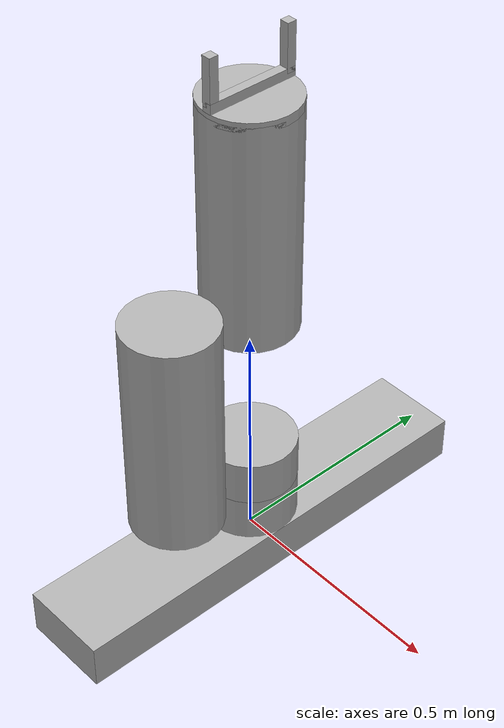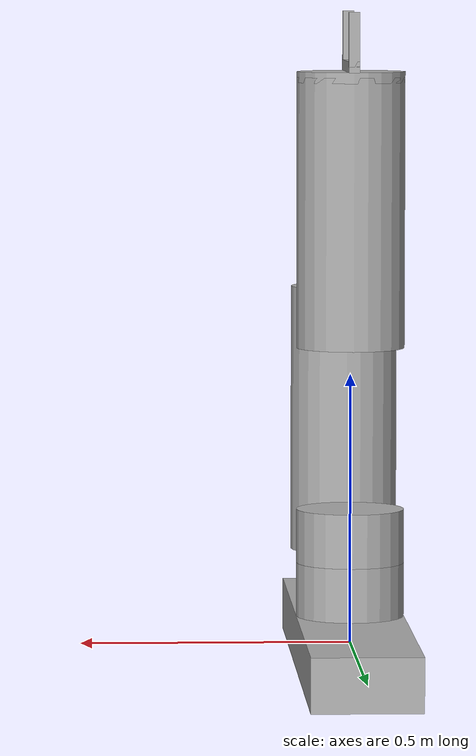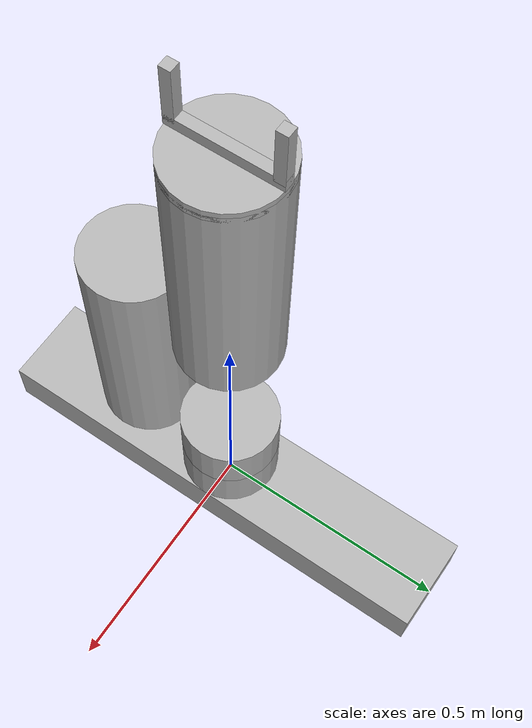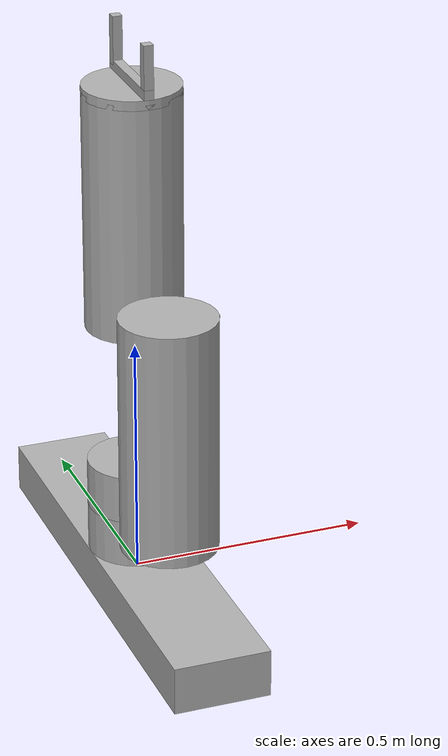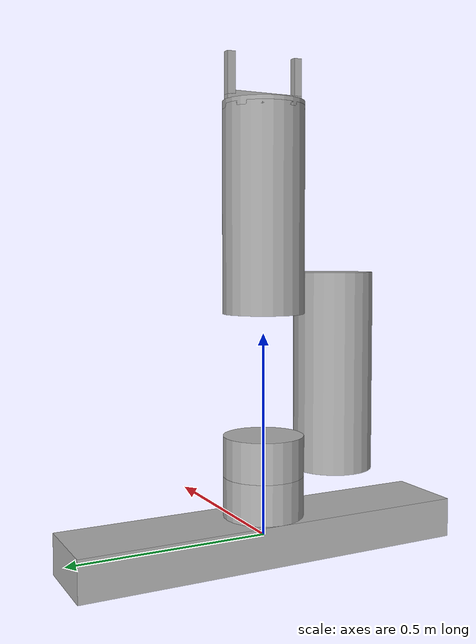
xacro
<?xml version="1.0"?>
<robot name="arm_robot" xmlns:xacro="http://www.ros.org/wiki/xacro">

  <!-- Constants -->
  <xacro:property name="density" value="2710"/> <!-- Aluminum density kg/m³ -->
  <xacro:property name="pi" value="3.1415926535897931"/>

  <!-- Materials -->
  <material name="aluminum">
    <color rgba="0.7 0.7 0.7 1"/>
  </material>
  <material name="gripper_color">
    <color rgba="0.9 0.9 0.9 1"/>
  </material>

  <!-- Generic Cylinder Macro -->
  <xacro:macro name="cylinder_link" params="name radius length origin_xyz origin_rpy">
    <link name="${name}">
      <xacro:property name="mass" value="${density * pi * radius*radius * length}"/>

      <visual>
        <origin rpy="${origin_rpy}" xyz="${origin_xyz}"/>
        <geometry>
          <cylinder radius="${radius}" length="${length}"/>
        </geometry>
        <material name="aluminum"/>
      </visual>

      <collision>
        <origin rpy="${origin_rpy}" xyz="${origin_xyz}"/>
        <geometry>
          <cylinder radius="${radius}" length="${length}"/>
        </geometry>
      </collision>

      <inertial>
        <origin rpy="${origin_rpy}" xyz="${origin_xyz}"/>
        <mass value="${mass}"/>
        <inertia
          ixx="${(mass/12) * (3*radius*radius + length*length)}"
          ixy="0"
          ixz="0"
          iyy="${(mass/12) * (3*radius*radius + length*length)}"
          iyz="0"
          izz="${0.5 * mass * radius*radius}"/>
      </inertial>
    </link>
  </xacro:macro>

  <!-- Generic Box Macro -->
  <xacro:macro name="box_link" params="name size_x size_y size_z origin_xyz origin_rpy">
    <link name="${name}">
      <xacro:property name="mass" value="${density * size_x * size_y * size_z}"/>

      <visual>
        <origin rpy="${origin_rpy}" xyz="${origin_xyz}"/>
        <geometry>
          <box size="${size_x} ${size_y} ${size_z}"/>
        </geometry>
        <material name="aluminum"/>
      </visual>

      <collision>
        <origin rpy="${origin_rpy}" xyz="${origin_xyz}"/>
        <geometry>
          <box size="${size_x} ${size_y} ${size_z}"/>
        </geometry>
      </collision>

      <inertial>
        <origin rpy="${origin_rpy}" xxyz="${origin_xyz}"/>
        <mass value="${mass}"/>
        <inertia
          ixx="${(mass/12) * (size_y*size_y + size_z*size_z)}"
          ixy="0"
          ixz="0"
          iyy="${(mass/12) * (size_x*size_x + size_z*size_z)}"
          iyz="0"
          izz="${(mass/12) * (size_x*size_x + size_y*size_y)}"/>
      </inertial>
    </link>
  </xacro:macro>

  <!-- Arm Link Components -->
  <xacro:box_link name="base_link"
    size_x="0.2" size_y="1" size_z="0.1"
    origin_xyz="0 0 0" origin_rpy="0 0 0"/>

  <xacro:cylinder_link name="arm1_p_link"
    radius="0.1" length="0.1"
    origin_xyz="0 0 0" origin_rpy="0 0 0"/>

  <xacro:cylinder_link name="arm1_r_link"
    radius="0.1" length="0.1"
    origin_xyz="0 0 0" origin_rpy="0 0 0"/>

  <xacro:cylinder_link name="arm2_link"
    radius="0.1" length="0.5"
    origin_xyz="0 0 ${(0.5-0.1)/2}" origin_rpy="0 0 0"/>

  <xacro:cylinder_link name="arm3_link"
    radius="0.1" length="0.5"
    origin_xyz="0 0 ${(0.5-0.1)/2}" origin_rpy="0 0 0"/>

  <xacro:cylinder_link name="arm4_link"
    radius="0.08" length="0.5"
    origin_xyz="0 0 ${(0.5-0.1)/2}" origin_rpy="0 0 0"/>

  <xacro:cylinder_link name="arm5_link"
    radius="0.1" length="0.02"
    origin_xyz="0 0 0" origin_rpy="0 0 0"/>

  <xacro:box_link name="arm6_link"
    size_x="0.02" size_y="0.2" size_z="0.02"
    origin_xyz="0 0 0" origin_rpy="0 0 0"/>

  <!-- Arm Joints -->

  <joint name="arm1_p_joint" type="prismatic">
    <parent link="base_link"/>
    <child link="arm1_p_link"/>
    <origin rpy="0 0 0" xyz="0 0 0.1"/>
    <axis xyz="0 1 0"/>
    <limit lower="-0.4" upper="0.4" effort="100" velocity="0.1"/>
  </joint>

  <joint name="arm1_r_joint" type="revolute">
    <parent link="arm1_p_link"/>
    <child link="arm1_r_link"/>
    <origin rpy="0 0 0" xyz="0 0 0.1"/>
    <axis xyz="0 0 1"/>
    <limit lower="-1.57" upper="1.57" effort="100" velocity="0.1"/>
  </joint>

  <joint name="arm2_joint" type="revolute">
    <parent link="arm1_r_link"/>
    <child link="arm2_link"/>
    <origin rpy="0 0 0" xyz="0 -0.2 -0"/>
    <axis xyz="0 1 0"/>
    <limit lower="-1.68" upper="2.01" effort="100" velocity="0.1"/>
  </joint>

  <joint name="arm3_joint" type="revolute">
    <parent link="arm2_link"/>
    <child link="arm3_link"/>
    <origin rpy="0 0 0" xyz="0 0.2 0.4"/>
    <axis xyz="0 1 0"/>
    <limit lower="-2.80" upper="2.80" effort="100" velocity="0.1"/>
  </joint>

  <joint name="arm4_joint" type="prismatic">
    <parent link="arm3_link"/>
    <child link="arm4_link"/>
    <origin rpy="0 0 0" xyz="0 0 0"/>
    <axis xyz="0 0 1"/>
    <limit lower="0" upper="0.5" effort="100" velocity="0.1"/>
  </joint>

  <joint name="arm5_joint" type="revolute">
    <parent link="arm4_link"/>
    <child link="arm5_link"/>
    <origin rpy="0 0 0" xyz="0 0 0.45"/>
    <axis xyz="0 0 1"/>
    <limit lower="-2.80" upper="2.80" effort="100" velocity="0.1"/>
  </joint>

  <joint name="arm6_joint" type="fixed">
    <parent link="arm5_link"/>
    <child link="arm6_link"/>
    <origin rpy="0 0 0" xyz="0 0 0.02"/>
  </joint>

  <!-- Gripper Components -->

  <xacro:box_link name="gripper_left"
    size_x="0.02" size_y="0.02" size_z="0.1"
    origin_xyz="0 0 0" origin_rpy="0 0 0"/>

  <xacro:box_link name="gripper_right"
    size_x="0.02" size_y="0.02" size_z="0.1"
    origin_xyz="0 0 0" origin_rpy="0 0 0"/>

  <joint name="gripper_joint1" type="prismatic">
    <parent link="arm6_link"/>
    <child link="gripper_left"/>
    <origin rpy="0 0 0" xyz="0 0.09 0.05"/>
    <axis xyz="0 1 0"/>
    <limit lower="-0.08" upper="0" effort="100" velocity="0.1"/>
  </joint>

  <joint name="gripper_joint2" type="prismatic">
    <parent link="arm6_link"/>
    <child link="gripper_right"/>
    <origin rpy="0 0 0" xyz="0 -0.09 0.05"/>
    <axis xyz="0 1 0"/>
    <limit lower="0" upper="0.08" effort="100" velocity="0.1"/>
  </joint>

  <!-- Transmission Import -->
  <xacro:include filename="$(find irwb_robot_pkg)/urdf/transmissions.xacro"/>

</robot>
